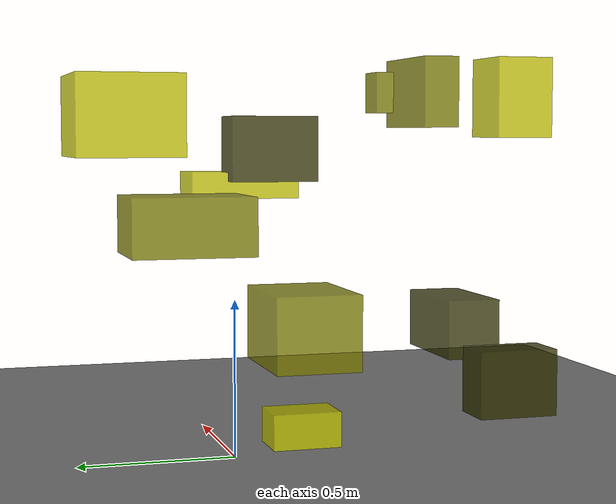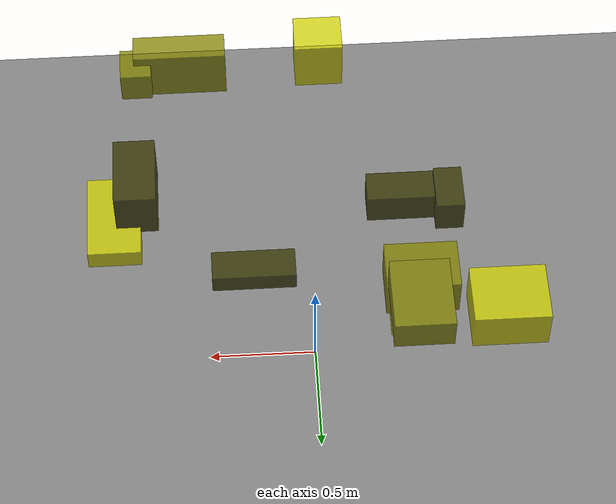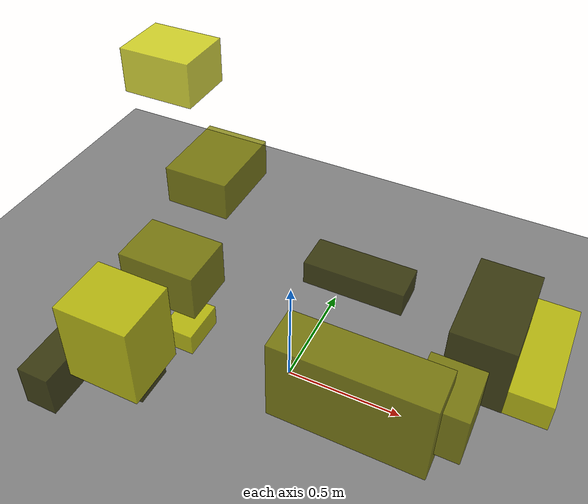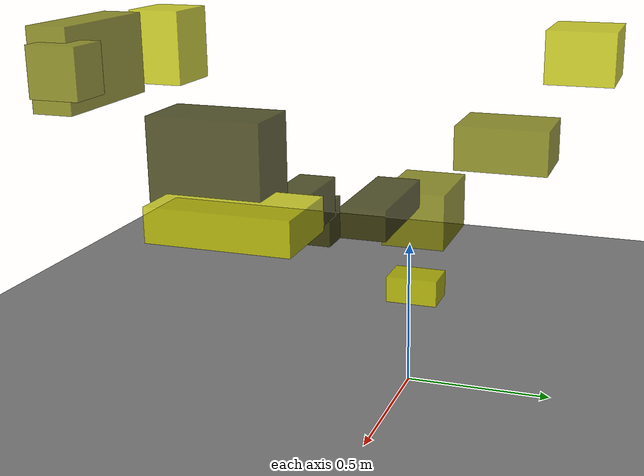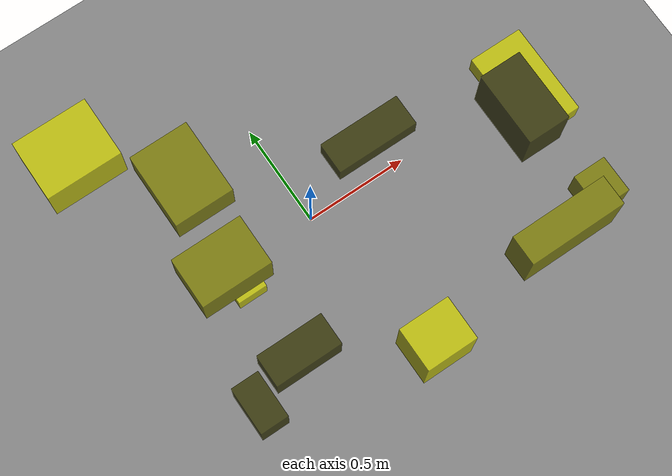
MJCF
<?xml version="1.0"?>
<mujoco model="obstacle_scene">
  <compiler angle="radian" coordinate="local"/>
  <option timestep="0.001" gravity="0 0 -9.81"/>

  <asset>
    <material name="obstacle_mat" rgba="0.8 0.8 0.0 0.8"/>
    <material name="ground_mat" rgba="0.5 0.5 0.5 1"/>
  </asset>

  <worldbody>
    <!-- Ground plane -->
    <geom name="ground" type="plane" size="3 3 0.1" material="ground_mat"/>

    <!-- Obstacles -->
    <body name="obstacle_0" pos="-0.676894 -0.628289 0.332942">
      <geom name="obs_0" type="box" size="0.066423 0.112513 0.092599" rgba="0.2 0.2 0.0 0.8"/>
    </body>
    <body name="obstacle_1" pos="0.564259 -0.836145 1.170146">
      <geom name="obs_1" type="box" size="0.203856 0.062901 0.124608" rgba="0.5 0.5 0.0 0.8"/>
    </body>
    <body name="obstacle_2" pos="0.887861 -0.224353 0.830442">
      <geom name="obs_2" type="box" size="0.117786 0.202115 0.048607" rgba="0.8 0.8 0.0 0.8"/>
    </body>
    <body name="obstacle_3" pos="0.276283 -0.014327 0.708837">
      <geom name="obs_3" type="box" size="0.187082 0.071214 0.047721" rgba="0.2 0.2 0.0 0.8"/>
    </body>
    <body name="obstacle_4" pos="-0.453120 0.240969 0.769072">
      <geom name="obs_4" type="box" size="0.133177 0.170602 0.081116" rgba="0.5 0.5 0.0 0.8"/>
    </body>
    <body name="obstacle_5" pos="-0.787159 0.465728 1.063285">
      <geom name="obs_5" type="box" size="0.160364 0.130475 0.100259" rgba="0.8 0.8 0.0 0.8"/>
    </body>
    <body name="obstacle_6" pos="0.783346 -0.317693 0.966153">
      <geom name="obs_6" type="box" size="0.092132 0.161736 0.120379" rgba="0.2 0.2 0.0 0.8"/>
    </body>
    <body name="obstacle_7" pos="0.761093 -0.786015 1.175686">
      <geom name="obs_7" type="box" size="0.067832 0.076789 0.075460" rgba="0.5 0.5 0.0 0.8"/>
    </body>
    <body name="obstacle_8" pos="-0.061783 -0.908251 1.136248">
      <geom name="obs_8" type="box" size="0.106218 0.091322 0.126985" rgba="0.8 0.8 0.0 0.8"/>
    </body>
    <body name="obstacle_9" pos="-0.432969 -0.558516 0.466559">
      <geom name="obs_9" type="box" size="0.157826 0.075739 0.082994" rgba="0.2 0.2 0.0 0.8"/>
    </body>
    <body name="obstacle_10" pos="-0.493062 -0.082004 0.479404">
      <geom name="obs_10" type="box" size="0.167850 0.119796 0.105605" rgba="0.5 0.5 0.0 0.8"/>
    </body>
    <body name="obstacle_11" pos="-0.430551 -0.094550 0.182792">
      <geom name="obs_11" type="box" size="0.070372 0.098830 0.050358" rgba="0.8 0.8 0.0 0.8"/>
    </body>
  </worldbody>
</mujoco>
